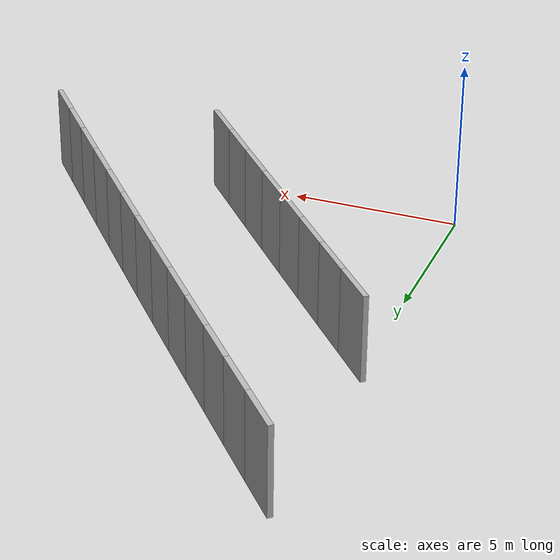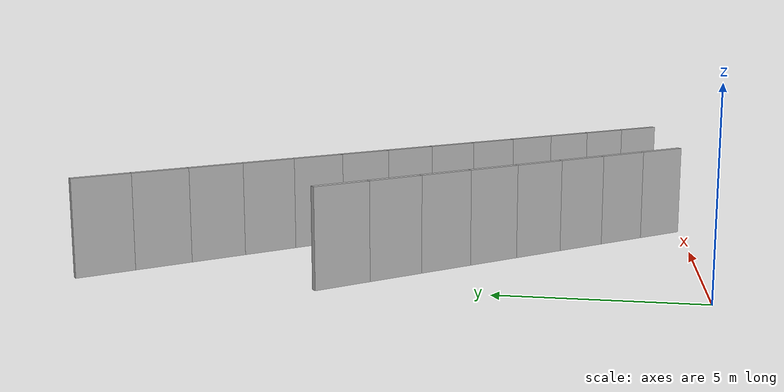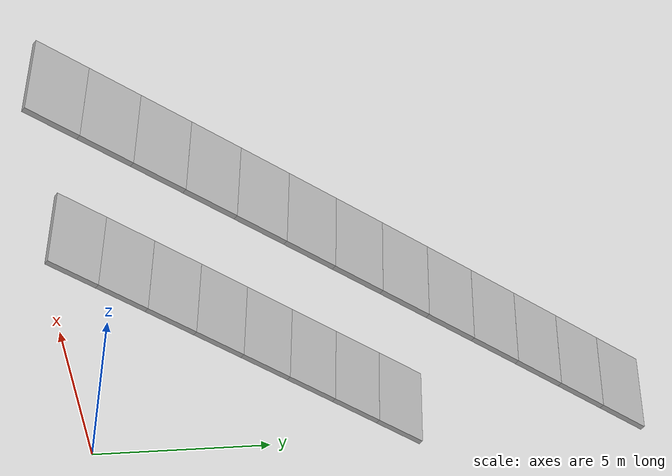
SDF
<?xml version="1.0" ?>
<sdf version="1.6">
  <model name="sps_4140">
    <pose frame="">0 0 0 0 -0 0</pose>
    <static>1</static>
    <self_collide>0</self_collide>
    <allow_auto_disable>0</allow_auto_disable>
    <link name="Wall10369">
      <kinematic>0</kinematic>
      <gravity>1</gravity>
      <self_collide>0</self_collide>
      <collision name="collision">
        <geometry>
          <box>
            <size>1.4966 0.15 2.5</size>
          </box>
        </geometry>
        <pose frame="">0 0 0 0 -0 0</pose>
      </collision>
      <visual name="visual">
        <geometry>
          <box>
            <size>1.4966 0.15 2.5</size>
          </box>
        </geometry>
        <pose frame="">0 0 0 0 -0 0</pose>
        <cast_shadows>1</cast_shadows>
        <transparency>0.0</transparency>
      </visual>
      <pose frame="">7.12386 0.688186 1.25 0 -0 2.27912</pose>
    </link>
    <link name="Wall10370">
      <kinematic>0</kinematic>
      <gravity>1</gravity>
      <self_collide>0</self_collide>
      <collision name="collision">
        <geometry>
          <box>
            <size>1.49655 0.15 2.5</size>
          </box>
        </geometry>
        <pose frame="">0 0 0 0 -0 0</pose>
      </collision>
      <visual name="visual">
        <geometry>
          <box>
            <size>1.49655 0.15 2.5</size>
          </box>
        </geometry>
        <pose frame="">0 0 0 0 -0 0</pose>
        <cast_shadows>1</cast_shadows>
        <transparency>0.0</transparency>
      </visual>
      <pose frame="">6.14934 1.82399 1.25 0 -0 2.28071</pose>
    </link>
    <link name="Wall10371">
      <kinematic>0</kinematic>
      <gravity>1</gravity>
      <self_collide>0</self_collide>
      <collision name="collision">
        <geometry>
          <box>
            <size>1.49638 0.15 2.5</size>
          </box>
        </geometry>
        <pose frame="">0 0 0 0 -0 0</pose>
      </collision>
      <visual name="visual">
        <geometry>
          <box>
            <size>1.49638 0.15 2.5</size>
          </box>
        </geometry>
        <pose frame="">0 0 0 0 -0 0</pose>
        <cast_shadows>1</cast_shadows>
        <transparency>0.0</transparency>
      </visual>
      <pose frame="">5.17315 2.95821 1.25 0 -0 2.28221</pose>
    </link>
    <link name="Wall10372">
      <kinematic>0</kinematic>
      <gravity>1</gravity>
      <self_collide>0</self_collide>
      <collision name="collision">
        <geometry>
          <box>
            <size>1.49645 0.15 2.5</size>
          </box>
        </geometry>
        <pose frame="">0 0 0 0 -0 0</pose>
      </collision>
      <visual name="visual">
        <geometry>
          <box>
            <size>1.49645 0.15 2.5</size>
          </box>
        </geometry>
        <pose frame="">0 0 0 0 -0 0</pose>
        <cast_shadows>1</cast_shadows>
        <transparency>0.0</transparency>
      </visual>
      <pose frame="">4.19515 4.0908 1.25 0 -0 2.28394</pose>
    </link>
    <link name="Wall10373">
      <kinematic>0</kinematic>
      <gravity>1</gravity>
      <self_collide>0</self_collide>
      <collision name="collision">
        <geometry>
          <box>
            <size>1.49655 0.15 2.5</size>
          </box>
        </geometry>
        <pose frame="">0 0 0 0 -0 0</pose>
      </collision>
      <visual name="visual">
        <geometry>
          <box>
            <size>1.49655 0.15 2.5</size>
          </box>
        </geometry>
        <pose frame="">0 0 0 0 -0 0</pose>
        <cast_shadows>1</cast_shadows>
        <transparency>0.0</transparency>
      </visual>
      <pose frame="">3.21526 5.22188 1.25 0 -0 2.28545</pose>
    </link>
    <link name="Wall10374">
      <kinematic>0</kinematic>
      <gravity>1</gravity>
      <self_collide>0</self_collide>
      <collision name="collision">
        <geometry>
          <box>
            <size>1.49648 0.15 2.5</size>
          </box>
        </geometry>
        <pose frame="">0 0 0 0 -0 0</pose>
      </collision>
      <visual name="visual">
        <geometry>
          <box>
            <size>1.49648 0.15 2.5</size>
          </box>
        </geometry>
        <pose frame="">0 0 0 0 -0 0</pose>
        <cast_shadows>1</cast_shadows>
        <transparency>0.0</transparency>
      </visual>
      <pose frame="">2.23366 6.35149 1.25 0 -0 2.28695</pose>
    </link>
    <link name="Wall10375">
      <kinematic>0</kinematic>
      <gravity>1</gravity>
      <self_collide>0</self_collide>
      <collision name="collision">
        <geometry>
          <box>
            <size>1.49652 0.15 2.5</size>
          </box>
        </geometry>
        <pose frame="">0 0 0 0 -0 0</pose>
      </collision>
      <visual name="visual">
        <geometry>
          <box>
            <size>1.49652 0.15 2.5</size>
          </box>
        </geometry>
        <pose frame="">0 0 0 0 -0 0</pose>
        <cast_shadows>1</cast_shadows>
        <transparency>0.0</transparency>
      </visual>
      <pose frame="">1.25027 7.47951 1.25 0 -0 2.28866</pose>
    </link>
    <link name="Wall10376">
      <kinematic>0</kinematic>
      <gravity>1</gravity>
      <self_collide>0</self_collide>
      <collision name="collision">
        <geometry>
          <box>
            <size>1.49667 0.15 2.5</size>
          </box>
        </geometry>
        <pose frame="">0 0 0 0 -0 0</pose>
      </collision>
      <visual name="visual">
        <geometry>
          <box>
            <size>1.49667 0.15 2.5</size>
          </box>
        </geometry>
        <pose frame="">0 0 0 0 -0 0</pose>
        <cast_shadows>1</cast_shadows>
        <transparency>0.0</transparency>
      </visual>
      <pose frame="">0.264976 8.606 1.25 0 -0 2.2902</pose>
    </link>
    <link name="Wall10964">
      <kinematic>0</kinematic>
      <gravity>1</gravity>
      <self_collide>0</self_collide>
      <collision name="collision">
        <geometry>
          <box>
            <size>1.50308 0.15 2.5</size>
          </box>
        </geometry>
        <pose frame="">0 0 0 0 -0 0</pose>
      </collision>
      <visual name="visual">
        <geometry>
          <box>
            <size>1.50308 0.15 2.5</size>
          </box>
        </geometry>
        <pose frame="">0 0 0 0 -0 0</pose>
        <cast_shadows>1</cast_shadows>
        <transparency>0.0</transparency>
      </visual>
      <pose frame="">12.2197 1.09581 1.25 0 -0 2.27597</pose>
    </link>
    <link name="Wall10965">
      <kinematic>0</kinematic>
      <gravity>1</gravity>
      <self_collide>0</self_collide>
      <collision name="collision">
        <geometry>
          <box>
            <size>1.50286 0.15 2.5</size>
          </box>
        </geometry>
        <pose frame="">0 0 0 0 -0 0</pose>
      </collision>
      <visual name="visual">
        <geometry>
          <box>
            <size>1.50286 0.15 2.5</size>
          </box>
        </geometry>
        <pose frame="">0 0 0 0 -0 0</pose>
        <cast_shadows>1</cast_shadows>
        <transparency>0.0</transparency>
      </visual>
      <pose frame="">11.2447 2.23961 1.25 0 -0 2.27743</pose>
    </link>
    <link name="Wall10966">
      <kinematic>0</kinematic>
      <gravity>1</gravity>
      <self_collide>0</self_collide>
      <collision name="collision">
        <geometry>
          <box>
            <size>1.5031 0.15 2.5</size>
          </box>
        </geometry>
        <pose frame="">0 0 0 0 -0 0</pose>
      </collision>
      <visual name="visual">
        <geometry>
          <box>
            <size>1.5031 0.15 2.5</size>
          </box>
        </geometry>
        <pose frame="">0 0 0 0 -0 0</pose>
        <cast_shadows>1</cast_shadows>
        <transparency>0.0</transparency>
      </visual>
      <pose frame="">10.268 3.38191 1.25 0 -0 2.27905</pose>
    </link>
    <link name="Wall10967">
      <kinematic>0</kinematic>
      <gravity>1</gravity>
      <self_collide>0</self_collide>
      <collision name="collision">
        <geometry>
          <box>
            <size>1.5029 0.15 2.5</size>
          </box>
        </geometry>
        <pose frame="">0 0 0 0 -0 0</pose>
      </collision>
      <visual name="visual">
        <geometry>
          <box>
            <size>1.5029 0.15 2.5</size>
          </box>
        </geometry>
        <pose frame="">0 0 0 0 -0 0</pose>
        <cast_shadows>1</cast_shadows>
        <transparency>0.0</transparency>
      </visual>
      <pose frame="">9.28927 4.5226 1.25 0 -0 2.28077</pose>
    </link>
    <link name="Wall10968">
      <kinematic>0</kinematic>
      <gravity>1</gravity>
      <self_collide>0</self_collide>
      <collision name="collision">
        <geometry>
          <box>
            <size>1.5032 0.15 2.5</size>
          </box>
        </geometry>
        <pose frame="">0 0 0 0 -0 0</pose>
      </collision>
      <visual name="visual">
        <geometry>
          <box>
            <size>1.5032 0.15 2.5</size>
          </box>
        </geometry>
        <pose frame="">0 0 0 0 -0 0</pose>
        <cast_shadows>1</cast_shadows>
        <transparency>0.0</transparency>
      </visual>
      <pose frame="">8.30865 5.6617 1.25 0 -0 2.28237</pose>
    </link>
    <link name="Wall10969">
      <kinematic>0</kinematic>
      <gravity>1</gravity>
      <self_collide>0</self_collide>
      <collision name="collision">
        <geometry>
          <box>
            <size>1.50309 0.15 2.5</size>
          </box>
        </geometry>
        <pose frame="">0 0 0 0 -0 0</pose>
      </collision>
      <visual name="visual">
        <geometry>
          <box>
            <size>1.50309 0.15 2.5</size>
          </box>
        </geometry>
        <pose frame="">0 0 0 0 -0 0</pose>
        <cast_shadows>1</cast_shadows>
        <transparency>0.0</transparency>
      </visual>
      <pose frame="">7.32626 6.79939 1.25 0 -0 2.28377</pose>
    </link>
    <link name="Wall10970">
      <kinematic>0</kinematic>
      <gravity>1</gravity>
      <self_collide>0</self_collide>
      <collision name="collision">
        <geometry>
          <box>
            <size>1.50299 0.15 2.5</size>
          </box>
        </geometry>
        <pose frame="">0 0 0 0 -0 0</pose>
      </collision>
      <visual name="visual">
        <geometry>
          <box>
            <size>1.50299 0.15 2.5</size>
          </box>
        </geometry>
        <pose frame="">0 0 0 0 -0 0</pose>
        <cast_shadows>1</cast_shadows>
        <transparency>0.0</transparency>
      </visual>
      <pose frame="">6.34215 7.93547 1.25 0 -0 2.2855</pose>
    </link>
    <link name="Wall10971">
      <kinematic>0</kinematic>
      <gravity>1</gravity>
      <self_collide>0</self_collide>
      <collision name="collision">
        <geometry>
          <box>
            <size>1.50291 0.15 2.5</size>
          </box>
        </geometry>
        <pose frame="">0 0 0 0 -0 0</pose>
      </collision>
      <visual name="visual">
        <geometry>
          <box>
            <size>1.50291 0.15 2.5</size>
          </box>
        </geometry>
        <pose frame="">0 0 0 0 -0 0</pose>
        <cast_shadows>1</cast_shadows>
        <transparency>0.0</transparency>
      </visual>
      <pose frame="">5.35625 9.06987 1.25 0 -0 2.28705</pose>
    </link>
    <link name="Wall10972">
      <kinematic>0</kinematic>
      <gravity>1</gravity>
      <self_collide>0</self_collide>
      <collision name="collision">
        <geometry>
          <box>
            <size>1.5031 0.15 2.5</size>
          </box>
        </geometry>
        <pose frame="">0 0 0 0 -0 0</pose>
      </collision>
      <visual name="visual">
        <geometry>
          <box>
            <size>1.5031 0.15 2.5</size>
          </box>
        </geometry>
        <pose frame="">0 0 0 0 -0 0</pose>
        <cast_shadows>1</cast_shadows>
        <transparency>0.0</transparency>
      </visual>
      <pose frame="">4.36855 10.2028 1.25 0 -0 2.28861</pose>
    </link>
    <link name="Wall10973">
      <kinematic>0</kinematic>
      <gravity>1</gravity>
      <self_collide>0</self_collide>
      <collision name="collision">
        <geometry>
          <box>
            <size>1.50319 0.15 2.5</size>
          </box>
        </geometry>
        <pose frame="">0 0 0 0 -0 0</pose>
      </collision>
      <visual name="visual">
        <geometry>
          <box>
            <size>1.50319 0.15 2.5</size>
          </box>
        </geometry>
        <pose frame="">0 0 0 0 -0 0</pose>
        <cast_shadows>1</cast_shadows>
        <transparency>0.0</transparency>
      </visual>
      <pose frame="">3.37893 11.3342 1.25 0 -0 2.29028</pose>
    </link>
    <link name="Wall10974">
      <kinematic>0</kinematic>
      <gravity>1</gravity>
      <self_collide>0</self_collide>
      <collision name="collision">
        <geometry>
          <box>
            <size>1.50304 0.15 2.5</size>
          </box>
        </geometry>
        <pose frame="">0 0 0 0 -0 0</pose>
      </collision>
      <visual name="visual">
        <geometry>
          <box>
            <size>1.50304 0.15 2.5</size>
          </box>
        </geometry>
        <pose frame="">0 0 0 0 -0 0</pose>
        <cast_shadows>1</cast_shadows>
        <transparency>0.0</transparency>
      </visual>
      <pose frame="">2.38753 12.464 1.25 0 -0 2.29177</pose>
    </link>
    <link name="Wall10975">
      <kinematic>0</kinematic>
      <gravity>1</gravity>
      <self_collide>0</self_collide>
      <collision name="collision">
        <geometry>
          <box>
            <size>1.50311 0.15 2.5</size>
          </box>
        </geometry>
        <pose frame="">0 0 0 0 -0 0</pose>
      </collision>
      <visual name="visual">
        <geometry>
          <box>
            <size>1.50311 0.15 2.5</size>
          </box>
        </geometry>
        <pose frame="">0 0 0 0 -0 0</pose>
        <cast_shadows>1</cast_shadows>
        <transparency>0.0</transparency>
      </visual>
      <pose frame="">1.39446 13.5923 1.25 0 -0 2.2933</pose>
    </link>
    <link name="Wall10976">
      <kinematic>0</kinematic>
      <gravity>1</gravity>
      <self_collide>0</self_collide>
      <collision name="collision">
        <geometry>
          <box>
            <size>1.50302 0.15 2.5</size>
          </box>
        </geometry>
        <pose frame="">0 0 0 0 -0 0</pose>
      </collision>
      <visual name="visual">
        <geometry>
          <box>
            <size>1.50302 0.15 2.5</size>
          </box>
        </geometry>
        <pose frame="">0 0 0 0 -0 0</pose>
        <cast_shadows>1</cast_shadows>
        <transparency>0.0</transparency>
      </visual>
      <pose frame="">0.399467 14.7189 1.25 0 -0 2.2952</pose>
    </link>
  </model>
</sdf>
